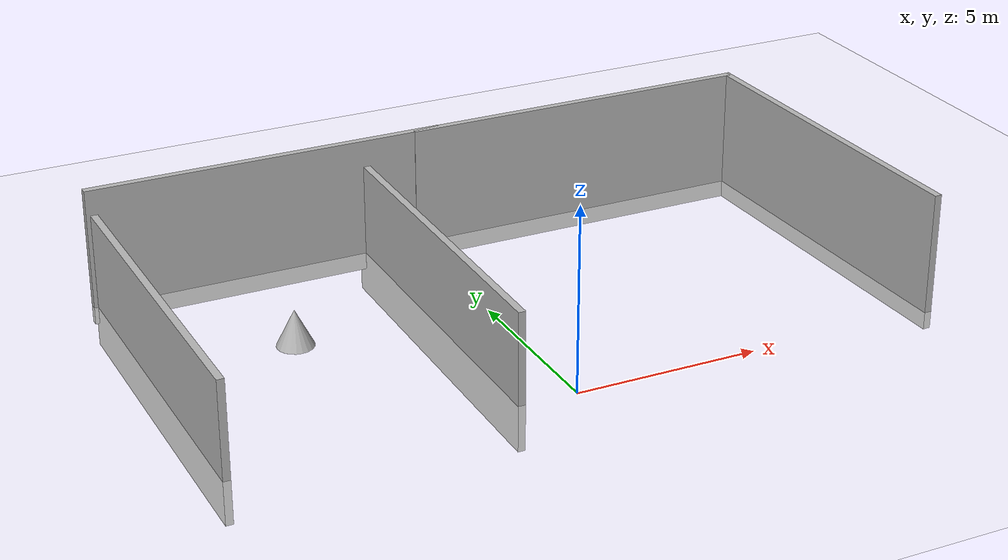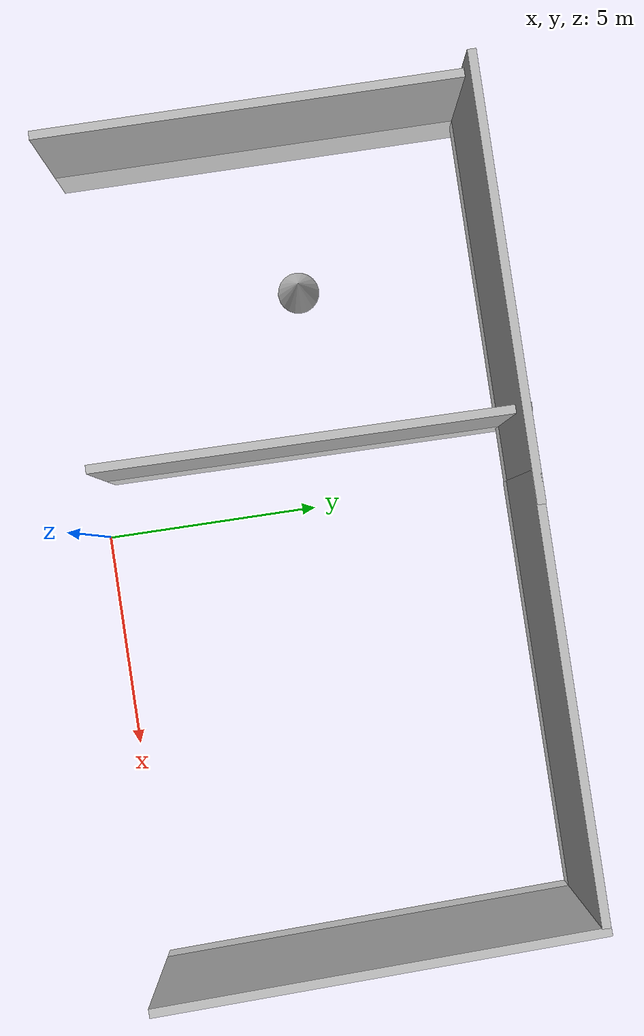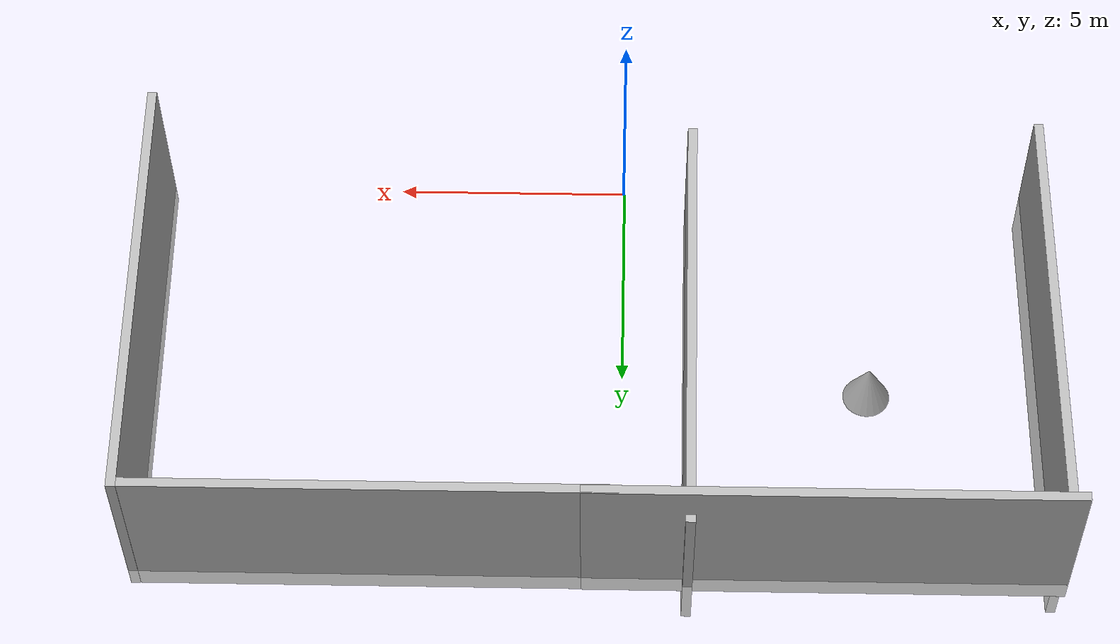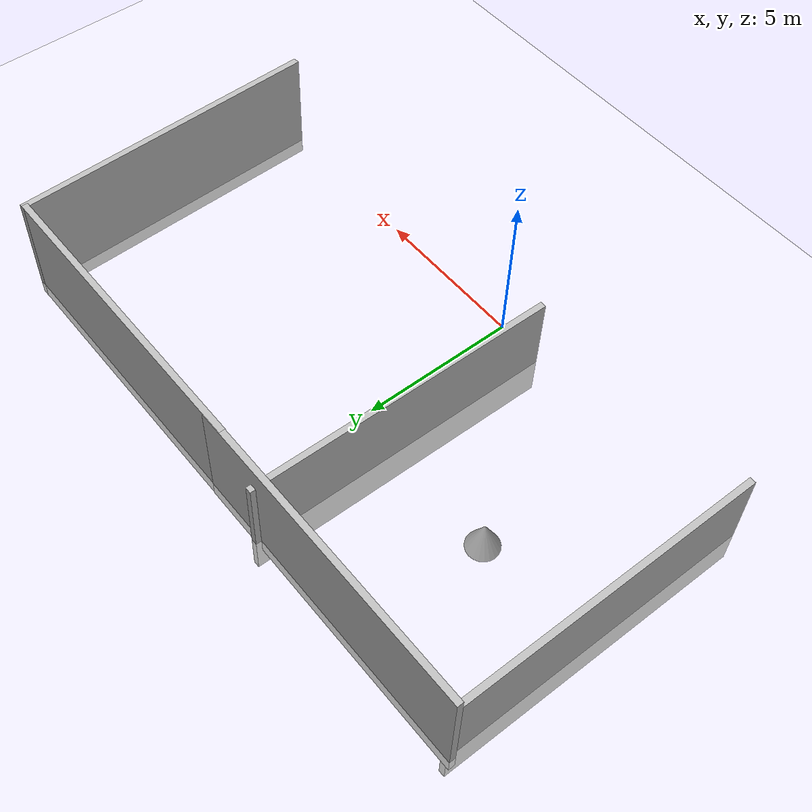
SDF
<sdf version="1.10">
 <world name="empty">
  <model name="ground_plane">
   <static>true</static>
   <link name="link">
    <collision name="collision">
     <geometry><plane><normal>0 0 1</normal><size>100 100</size></plane></geometry>
    </collision>
    <visual name="visual">
     <geometry><plane><normal>0 0 1</normal><size>20 20</size></plane></geometry>
     <material>
      <ambient>1 1 1 1</ambient>
      <diffuse>1 1 1 1</diffuse>
      <pbr>
       <metal>
        <albedo_map>file:///home/kiranchand/Downloads/project_2026/grass.jpg</albedo_map>
        <roughness>0.9</roughness>
        <metalness>0.0</metalness>
       </metal>
      </pbr>
     </material>
    </visual>
    <inertial>
     <mass>1</mass>
     <inertia><ixx>1</ixx><ixy>0</ixy><ixz>0</ixz><iyy>1</iyy><iyz>0</iyz><izz>1</izz></inertia>
    </inertial>
   </link>
  </model>
  <model name="cutout_wall">
   <static>true</static>
   <link name="link">
    <pose>0 0 1.3999999999999999 0 0 0</pose>
    <collision name="collision">
     <geometry><box><size>10 0.20000000000000001 3.7999999999999998</size></box></geometry>
     <surface>
      <contact>
       <collide_without_contact>true</collide_without_contact>
       <collide_without_contact_bitmask>2</collide_without_contact_bitmask>
      </contact>
     </surface>
    </collision>
    <visual name="visual">
     <cast_shadows>false</cast_shadows>
     <geometry><box><size>10 0.20000000000000001 3.7999999999999998</size></box></geometry>
     <material>
      <script>
       <uri>https://fuel.gazebosim.org/1.0/openrobotics/models/cutout wall/2/files/materials/scripts</uri>
       <uri>https://fuel.gazebosim.org/1.0/openrobotics/models/cutout wall/2/files/materials/textures</uri>
       <name>drc_practice/cutout_wall</name>
      </script>
     </material>
    </visual>
    <sensor name="mud_contact" type="contact">
     <always_on>true</always_on>
     <update_rate>1000</update_rate>
     <contact><collision>collision</collision><topic>__default_topic__</topic></contact>
    </sensor>
    <inertial>
     <mass>1</mass>
     <inertia><ixx>1</ixx><ixy>0</ixy><ixz>0</ixz><iyy>1</iyy><iyz>0</iyz><izz>1</izz></inertia>
    </inertial>
   </link>
   <plugin name="gazebo_mud" filename="libMudPlugin.so">
    <contact_sensor_name>link/mud_contact</contact_sensor_name>
    <stiffness>0.0</stiffness>
    <damping>40.0</damping>
    <contact_surface_bitmask>2</contact_surface_bitmask>
    <link_name>drill::link</link_name>
   </plugin>
   <pose>-4.2005801200866699 9.8115701675415039 0 0 0 0</pose>
  </model>
  <model name="cutout_wall_2">
   <static>true</static>
   <link name="link">
    <pose>0 0 1.3999999999999999 0 0 0</pose>
    <collision name="collision">
     <geometry><box><size>10 0.20000000000000001 3.7999999999999998</size></box></geometry>
     <surface>
      <contact>
       <collide_without_contact>true</collide_without_contact>
       <collide_without_contact_bitmask>2</collide_without_contact_bitmask>
      </contact>
     </surface>
    </collision>
    <visual name="visual">
     <cast_shadows>false</cast_shadows>
     <geometry><box><size>10 0.20000000000000001 3.7999999999999998</size></box></geometry>
     <material>
      <script>
       <uri>https://fuel.gazebosim.org/1.0/openrobotics/models/cutout wall/2/files/materials/scripts</uri>
       <uri>https://fuel.gazebosim.org/1.0/openrobotics/models/cutout wall/2/files/materials/textures</uri>
       <name>drc_practice/cutout_wall</name>
      </script>
     </material>
    </visual>
    <sensor name="mud_contact" type="contact">
     <always_on>true</always_on>
     <update_rate>1000</update_rate>
     <contact><collision>collision</collision><topic>__default_topic__</topic></contact>
    </sensor>
    <inertial>
     <mass>1</mass>
     <inertia><ixx>1</ixx><ixy>0</ixy><ixz>0</ixz><iyy>1</iyy><iyz>0</iyz><izz>1</izz></inertia>
    </inertial>
   </link>
   <plugin name="gazebo_mud" filename="libMudPlugin.so">
    <contact_sensor_name>link/mud_contact</contact_sensor_name>
    <stiffness>0.0</stiffness>
    <damping>40.0</damping>
    <contact_surface_bitmask>2</contact_surface_bitmask>
    <link_name>drill::link</link_name>
   </plugin>
   <pose>5.0395960807800293 9.7994699478149414 0 0 0 0</pose>
  </model>
  <model name="cutout_wall_3">
   <static>true</static>
   <link name="link">
    <pose>0 0 1.3999999999999999 0 0 0</pose>
    <collision name="collision">
     <geometry><box><size>10 0.20000000000000001 3.7999999999999998</size></box></geometry>
     <surface>
      <contact>
       <collide_without_contact>true</collide_without_contact>
       <collide_without_contact_bitmask>2</collide_without_contact_bitmask>
      </contact>
     </surface>
    </collision>
    <visual name="visual">
     <cast_shadows>false</cast_shadows>
     <geometry><box><size>10 0.20000000000000001 3.7999999999999998</size></box></geometry>
     <material>
      <script>
       <uri>https://fuel.gazebosim.org/1.0/openrobotics/models/cutout wall/2/files/materials/scripts</uri>
       <uri>https://fuel.gazebosim.org/1.0/openrobotics/models/cutout wall/2/files/materials/textures</uri>
       <name>drc_practice/cutout_wall</name>
      </script>
     </material>
    </visual>
    <sensor name="mud_contact" type="contact">
     <always_on>true</always_on>
     <update_rate>1000</update_rate>
     <contact><collision>collision</collision><topic>__default_topic__</topic></contact>
    </sensor>
    <inertial>
     <mass>1</mass>
     <inertia><ixx>1</ixx><ixy>0</ixy><ixz>0</ixz><iyy>1</iyy><iyz>0</iyz><izz>1</izz></inertia>
    </inertial>
   </link>
   <plugin name="gazebo_mud" filename="libMudPlugin.so">
    <contact_sensor_name>link/mud_contact</contact_sensor_name>
    <stiffness>0.0</stiffness>
    <damping>40.0</damping>
    <contact_surface_bitmask>2</contact_surface_bitmask>
    <link_name>drill::link</link_name>
   </plugin>
   <pose>10.142600059509277 4.9063401222229004 -2.2204460492503131e-16 0 0 1.5975869278983041</pose>
  </model>
  <model name="cone">
   <pose>-5.2334399234616056 5.3804774283384074 0.49999999990217003 1.5074091324028823e-10 5.043767910941838e-10 3.3448848317788373e-14</pose>
   <link name="cone_link">
    <inertial>
     <inertia>
      <ixx>0.074999999999999997</ixx>
      <ixy>0</ixy>
      <ixz>0</ixz>
      <iyy>0.074999999999999997</iyy>
      <iyz>0</iyz>
      <izz>0.074999999999999997</izz>
     </inertia>
     <mass>1</mass>
    </inertial>
    <collision name="cone_collision">
     <geometry><cone><radius>0.5</radius><length>1</length></cone></geometry>
    </collision>
    <visual name="cone_visual">
     <geometry><cone><radius>0.5</radius><length>1</length></cone></geometry>
     <material>
      <ambient>0.300000012 0.300000012 0.300000012 1</ambient>
      <diffuse>0.699999988 0.699999988 0.699999988 1</diffuse>
      <specular>1 1 1 1</specular>
     </material>
    </visual>
   </link>
   <static>false</static>
  </model>
  <model name="cutout_wall_5">
   <static>true</static>
   <link name="link">
    <pose>0 0 1.3999999999999999 0 0 0</pose>
    <collision name="collision">
     <geometry><box><size>10 0.20000000000000001 3.7999999999999998</size></box></geometry>
     <surface>
      <contact>
       <collide_without_contact>true</collide_without_contact>
       <collide_without_contact_bitmask>2</collide_without_contact_bitmask>
      </contact>
     </surface>
    </collision>
    <visual name="visual">
     <cast_shadows>false</cast_shadows>
     <geometry><box><size>10 0.20000000000000001 3.7999999999999998</size></box></geometry>
     <material>
      <script>
       <uri>https://fuel.gazebosim.org/1.0/openrobotics/models/cutout wall/2/files/materials/scripts</uri>
       <uri>https://fuel.gazebosim.org/1.0/openrobotics/models/cutout wall/2/files/materials/textures</uri>
       <name>drc_practice/cutout_wall</name>
      </script>
     </material>
    </visual>
    <sensor name="mud_contact" type="contact">
     <always_on>true</always_on>
     <update_rate>1000</update_rate>
     <contact><collision>collision</collision><topic>__default_topic__</topic></contact>
    </sensor>
    <inertial>
     <mass>1</mass>
     <inertia><ixx>1</ixx><ixy>0</ixy><ixz>0</ixz><iyy>1</iyy><iyz>0</iyz><izz>1</izz></inertia>
    </inertial>
   </link>
   <plugin name="gazebo_mud" filename="libMudPlugin.so">
    <contact_sensor_name>link/mud_contact</contact_sensor_name>
    <stiffness>0.0</stiffness>
    <damping>40.0</damping>
    <contact_surface_bitmask>2</contact_surface_bitmask>
    <link_name>drill::link</link_name>
   </plugin>
   <pose>-9.0003976821899414 4.9035530090332031 -0.6981779932975769 0 0 -1.5732099930125898</pose>
  </model>
  <model name="cutout_wall_6">
   <static>true</static>
   <link name="link">
    <pose>0 0 1.3999999999999999 0 0 0</pose>
    <collision name="collision">
     <geometry><box><size>10 0.20000000000000001 3.7999999999999998</size></box></geometry>
     <surface>
      <contact>
       <collide_without_contact>true</collide_without_contact>
       <collide_without_contact_bitmask>2</collide_without_contact_bitmask>
      </contact>
     </surface>
    </collision>
    <visual name="visual">
     <cast_shadows>false</cast_shadows>
     <geometry><box><size>10 0.20000000000000001 3.7999999999999998</size></box></geometry>
     <material>
      <script>
       <uri>https://fuel.gazebosim.org/1.0/openrobotics/models/cutout wall/2/files/materials/scripts</uri>
       <uri>https://fuel.gazebosim.org/1.0/openrobotics/models/cutout wall/2/files/materials/textures</uri>
       <name>drc_practice/cutout_wall</name>
      </script>
     </material>
    </visual>
    <sensor name="mud_contact" type="contact">
     <always_on>true</always_on>
     <update_rate>1000</update_rate>
     <contact><collision>collision</collision><topic>__default_topic__</topic></contact>
    </sensor>
    <inertial>
     <mass>1</mass>
     <inertia><ixx>1</ixx><ixy>0</ixy><ixz>0</ixz><iyy>1</iyy><iyz>0</iyz><izz>1</izz></inertia>
    </inertial>
   </link>
   <plugin name="gazebo_mud" filename="libMudPlugin.so">
    <contact_sensor_name>link/mud_contact</contact_sensor_name>
    <stiffness>0.0</stiffness>
    <damping>40.0</damping>
    <contact_surface_bitmask>2</contact_surface_bitmask>
    <link_name>drill::link</link_name>
   </plugin>
   <pose>-1.4285693168640137 5.0918540954589844 -0.76978510618209839 -1.0063813223582227e-09 0.0038256400405619561 -1.5785900716637775</pose>
  </model>
 </world>
</sdf>
